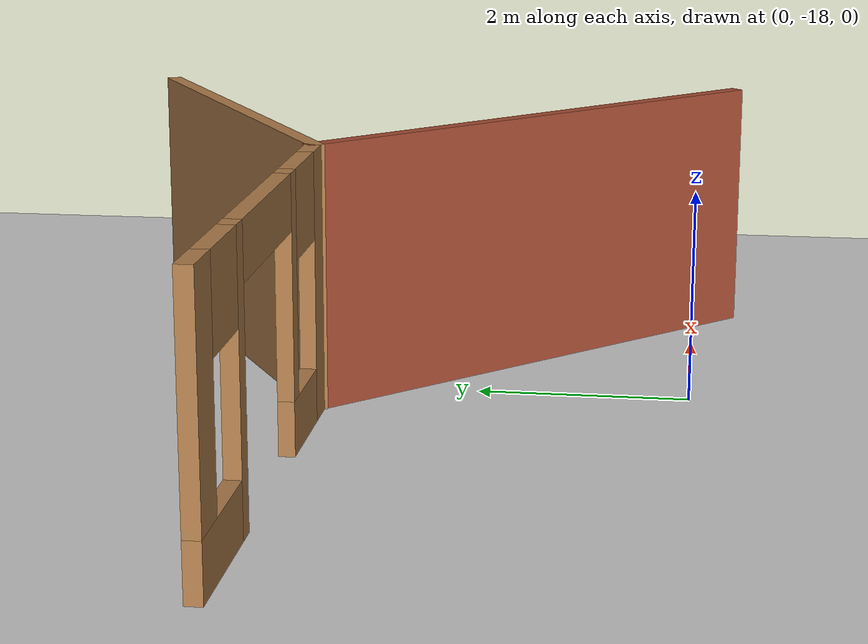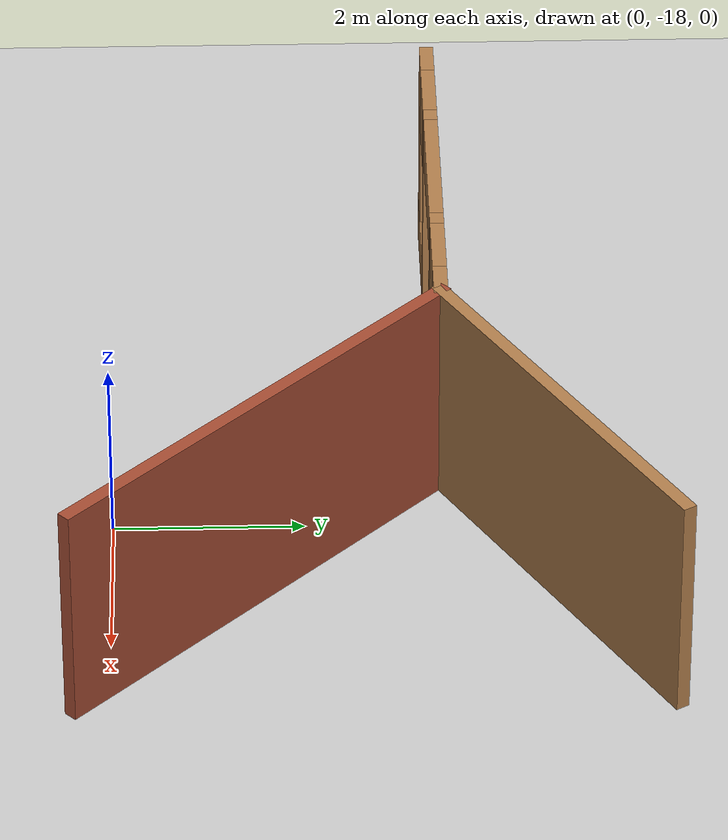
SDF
<sdf version="1.6">
 <world name="default">
  <model name="ground_plane">
   <static>1</static>
   <link name="link">
    <collision name="collision">
     <geometry><plane><normal>0 0 1</normal><size>100 100</size></plane></geometry>
     <surface><friction><ode><mu>100</mu><mu2>50</mu2></ode></friction></surface>
    </collision>
    <visual name="visual">
     <cast_shadows>0</cast_shadows>
     <geometry><plane><normal>0 0 1</normal><size>100 100</size></plane></geometry>
     <material>
      <script><uri>file://media/materials/scripts/gazebo.material</uri><name>Gazebo/Grey</name></script>
     </material>
    </visual>
   </link>
  </model>
  <model name="spiral_office">
   <link name="Wall_103">
    <collision name="Wall_103_Collision">
     <geometry><box><size>4.56386 0.15 2.5</size></box></geometry>
     <pose>0 0 1.25 0 -0 0</pose>
    </collision>
    <visual name="Wall_103_Visual">
     <pose>0 0 1.25 0 -0 0</pose>
     <geometry><box><size>4.56386 0.15 2.5</size></box></geometry>
     <material>
      <script><uri>file://media/materials/scripts/gazebo.material</uri><name>Gazebo/Wood</name></script>
      <ambient>1 1 1 1</ambient>
     </material>
     <meta><layer>0</layer></meta>
    </visual>
    <pose>1.17619 -13.4264 0 0 0 -2.60036</pose>
   </link>
   <link name="Wall_21">
    <collision name="Wall_21_Collision">
     <geometry><box><size>5.5 0.15 2.5</size></box></geometry>
     <pose>0 0 1.25 0 -0 0</pose>
    </collision>
    <visual name="Wall_21_Visual">
     <pose>0 0 1.25 0 -0 0</pose>
     <geometry><box><size>5.5 0.15 2.5</size></box></geometry>
     <material>
      <script><uri>file://media/materials/scripts/gazebo.material</uri><name>Gazebo/Bricks</name></script>
      <ambient>1 1 1 1</ambient>
     </material>
     <meta><layer>0</layer></meta>
    </visual>
    <pose>1.17619 -16.4549 0 0 -0 2.35619</pose>
   </link>
   <link name="Wall_22">
    <pose>-3.0151 -14.5635 0 0 0 -3.14155</pose>
    <visual name="Wall_22_Visual_0">
     <pose>-2.1319 0 1.25 0 -0 0</pose>
     <geometry><box><size>0.486208 0.15 2.5</size></box></geometry>
     <material>
      <script><uri>file://media/materials/scripts/gazebo.material</uri><name>Gazebo/Wood</name></script>
      <ambient>1 1 1 1</ambient>
     </material>
     <meta><layer>0</layer></meta>
    </visual>
    <collision name="Wall_22_Collision_0">
     <geometry><box><size>0.486208 0.15 2.5</size></box></geometry>
     <pose>-2.1319 0 1.25 0 -0 0</pose>
    </collision>
    <visual name="Wall_22_Visual_1">
     <pose>1.01121 0 1.25 0 -0 0</pose>
     <geometry><box><size>0.2 0.15 2.5</size></box></geometry>
     <material>
      <script><uri>file://media/materials/scripts/gazebo.material</uri><name>Gazebo/Wood</name></script>
      <ambient>1 1 1 1</ambient>
     </material>
     <meta><layer>0</layer></meta>
    </visual>
    <collision name="Wall_22_Collision_1">
     <geometry><box><size>0.2 0.15 2.5</size></box></geometry>
     <pose>1.01121 0 1.25 0 -0 0</pose>
    </collision>
    <visual name="Wall_22_Visual_2">
     <pose>-1.38879 0 0.25 0 -0 0</pose>
     <geometry><box><size>1 0.15 0.5</size></box></geometry>
     <material>
      <script><uri>file://media/materials/scripts/gazebo.material</uri><name>Gazebo/Wood</name></script>
      <ambient>1 1 1 1</ambient>
     </material>
     <meta><layer>0</layer></meta>
    </visual>
    <collision name="Wall_22_Collision_2">
     <geometry><box><size>1 0.15 0.5</size></box></geometry>
     <pose>-1.38879 0 0.25 0 -0 0</pose>
    </collision>
    <visual name="Wall_22_Visual_3">
     <pose>1.7431 0 0.25 0 -0 0</pose>
     <geometry><box><size>1.26379 0.15 0.5</size></box></geometry>
     <material>
      <script><uri>file://media/materials/scripts/gazebo.material</uri><name>Gazebo/Wood</name></script>
      <ambient>1 1 1 1</ambient>
     </material>
     <meta><layer>0</layer></meta>
    </visual>
    <collision name="Wall_22_Collision_3">
     <geometry><box><size>1.26379 0.15 0.5</size></box></geometry>
     <pose>1.7431 0 0.25 0 -0 0</pose>
    </collision>
    <visual name="Wall_22_Visual_4">
     <pose>-0.988792 0 1.5 0 -0 0</pose>
     <geometry><box><size>0.2 0.15 2</size></box></geometry>
     <material>
      <script><uri>file://media/materials/scripts/gazebo.material</uri><name>Gazebo/Wood</name></script>
      <ambient>1 1 1 1</ambient>
     </material>
     <meta><layer>0</layer></meta>
    </visual>
    <collision name="Wall_22_Collision_4">
     <geometry><box><size>0.2 0.15 2</size></box></geometry>
     <pose>-0.988792 0 1.5 0 -0 0</pose>
    </collision>
    <visual name="Wall_22_Visual_5">
     <pose>-0.988792 0 1.5 0 -0 0</pose>
     <geometry><box><size>0.2 0.15 2</size></box></geometry>
     <material>
      <script><uri>file://media/materials/scripts/gazebo.material</uri><name>Gazebo/Wood</name></script>
      <ambient>1 1 1 1</ambient>
     </material>
     <meta><layer>0</layer></meta>
    </visual>
    <collision name="Wall_22_Collision_5">
     <geometry><box><size>0.2 0.15 2</size></box></geometry>
     <pose>-0.988792 0 1.5 0 -0 0</pose>
    </collision>
    <visual name="Wall_22_Visual_6">
     <pose>2.1431 0 1.5 0 -0 0</pose>
     <geometry><box><size>0.463792 0.15 2</size></box></geometry>
     <material>
      <script><uri>file://media/materials/scripts/gazebo.material</uri><name>Gazebo/Wood</name></script>
      <ambient>1 1 1 1</ambient>
     </material>
     <meta><layer>0</layer></meta>
    </visual>
    <collision name="Wall_22_Collision_6">
     <geometry><box><size>0.463792 0.15 2</size></box></geometry>
     <pose>2.1431 0 1.5 0 -0 0</pose>
    </collision>
    <visual name="Wall_22_Visual_7">
     <pose>-1.48879 0 2.1 0 -0 0</pose>
     <geometry><box><size>0.8 0.15 0.8</size></box></geometry>
     <material>
      <script><uri>file://media/materials/scripts/gazebo.material</uri><name>Gazebo/Wood</name></script>
      <ambient>1 1 1 1</ambient>
     </material>
     <meta><layer>0</layer></meta>
    </visual>
    <collision name="Wall_22_Collision_7">
     <geometry><box><size>0.8 0.15 0.8</size></box></geometry>
     <pose>-1.48879 0 2.1 0 -0 0</pose>
    </collision>
    <visual name="Wall_22_Visual_8">
     <pose>1.51121 0 2.1 0 -0 0</pose>
     <geometry><box><size>0.8 0.15 0.8</size></box></geometry>
     <material>
      <script><uri>file://media/materials/scripts/gazebo.material</uri><name>Gazebo/Wood</name></script>
      <ambient>1 1 1 1</ambient>
     </material>
     <meta><layer>0</layer></meta>
    </visual>
    <collision name="Wall_22_Collision_8">
     <geometry><box><size>0.8 0.15 0.8</size></box></geometry>
     <pose>1.51121 0 2.1 0 -0 0</pose>
    </collision>
    <visual name="Wall_22_Visual_9">
     <pose>0.011208 0 2.25 0 -0 0</pose>
     <geometry><box><size>1.8 0.15 0.5</size></box></geometry>
     <material>
      <script><uri>file://media/materials/scripts/gazebo.material</uri><name>Gazebo/Wood</name></script>
      <ambient>1 1 1 1</ambient>
     </material>
     <meta><layer>0</layer></meta>
    </visual>
    <collision name="Wall_22_Collision_9">
     <geometry><box><size>1.8 0.15 0.5</size></box></geometry>
     <pose>0.011208 0 2.25 0 -0 0</pose>
    </collision>
    <visual name="Wall_22_Visual_10">
     <pose>0.011208 0 2.25 0 -0 0</pose>
     <geometry><box><size>1.8 0.15 0.5</size></box></geometry>
     <material>
      <script><uri>file://media/materials/scripts/gazebo.material</uri><name>Gazebo/Wood</name></script>
      <ambient>1 1 1 1</ambient>
     </material>
     <meta><layer>0</layer></meta>
    </visual>
    <collision name="Wall_22_Collision_10">
     <geometry><box><size>1.8 0.15 0.5</size></box></geometry>
     <pose>0.011208 0 2.25 0 -0 0</pose>
    </collision>
   </link>
   <static>1</static>
  </model>
 </world>
</sdf>
